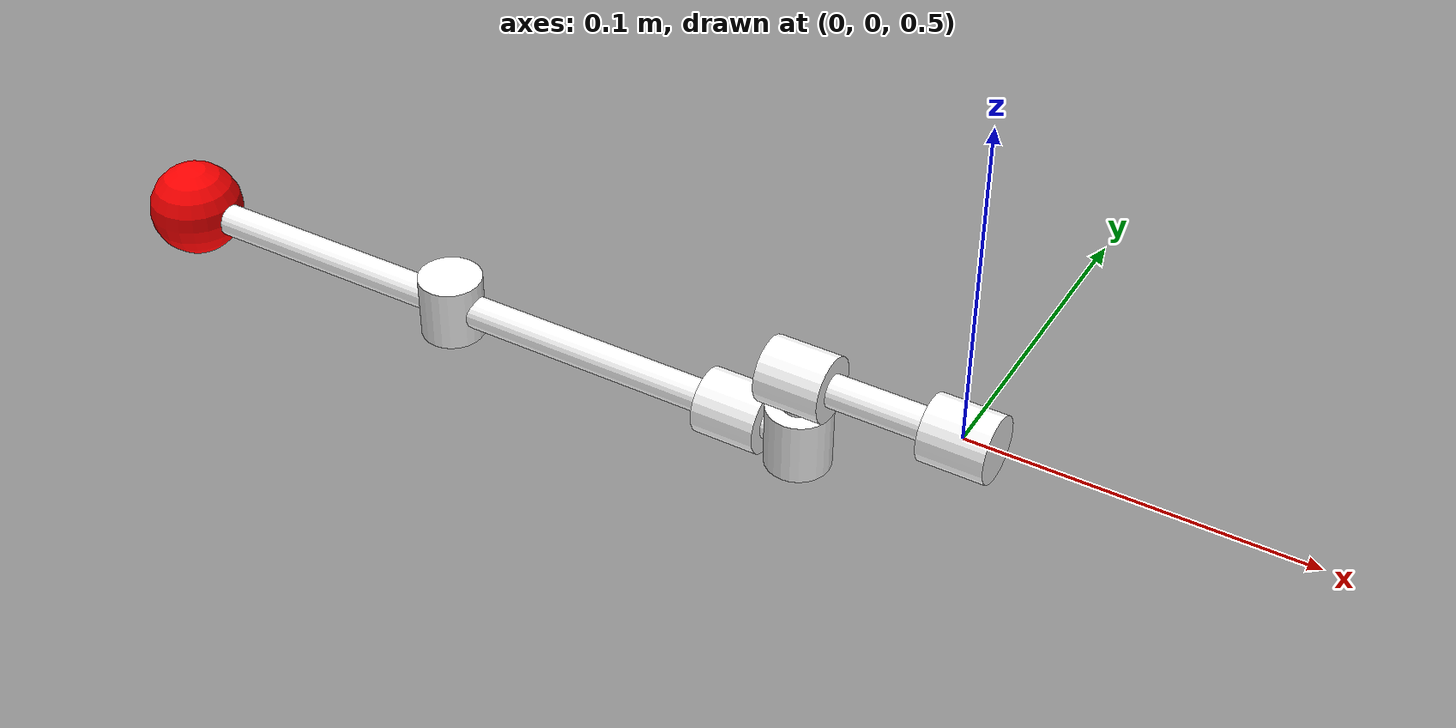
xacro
<?xml version="1.0"?>
<robot xmlns:xacro="http://wiki.ros.org/xacro" name="my_arm">

  <!-- 导入 my_arm 几何描述宏 -->
  <xacro:include filename="$(find my_arm_description)/my_arm/urdf/my_arm_description.urdf.xacro"/>

  <xacro:property name="base_joint_initial_angle" value="0"/>
  <xacro:property name="joint_1_initial_angle" value="1.57"/>
  <xacro:property name="joint_2_initial_angle" value="-1.57"/>
  <xacro:property name="joint_3_initial_angle" value="0"/>
  <xacro:property name="joint_4_initial_angle" value="0"/>

  <xacro:my_arm_description/>

  <!-- 导入 my_arm ros2_control 控制描述 -->
  <xacro:include filename="$(find my_arm)/ros2_control/my_arm.ros2_control.xacro" />
  <xacro:my_arm_ros2_control
    name="my_arm"
    base_joint_initial_angle="${base_joint_initial_angle}"
    joint_1_initial_angle="${joint_1_initial_angle}"
    joint_2_initial_angle="${joint_2_initial_angle}"
    joint_3_initial_angle="${joint_3_initial_angle}"
    joint_4_initial_angle="${joint_4_initial_angle}"/>

</robot>

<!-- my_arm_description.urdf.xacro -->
<robot xmlns:xacro="http://www.ros.org/wiki/xacro">

  <!--
    机器人描述宏
    参数：所有关节的连杆长度和基座三轴位姿（统一管理）
    注意：关节初始角度在 my_arm.urdf.xacro 中通过属性定义
  -->
  <xacro:macro name="my_arm_description" params="
    base_rod_length:=0.00
    base_x:=0
    base_y:=0
    base_z:=0.5
    base_roll:=0
    base_pitch:=1.57
    base_yaw:=0
    joint_1_rod1_length:=0.05
    joint_1_rod2_length:=0.02
    joint_2_rod1_length:=0.00
    joint_2_rod2_length:=0.02
    joint_3_rod1_length:=0.10
    joint_3_rod2_length:=0.00
    joint_4_rod1_length:=0.00
    joint_4_rod2_length:=0.10">

    <!-- 包含关节模块宏 -->
    <xacro:include filename="$(find my_arm_description)/my_arm/urdf/inc/joint_module.xacro"/>

    <!-- 创建世界坐标系链接 -->
    <link name="world"/>

    <xacro:base_module
      link_name="base_link"
      rod_length="${base_rod_length}"
      base_x="${base_x}"
      base_y="${base_y}"
      base_z="${base_z}"
      base_roll="${base_roll}"
      base_pitch="${base_pitch}"
      base_yaw="${base_yaw}"/>

    <xacro:joint_module
      link_name="link_1"
      joint_name="joint_1"
      parent_link="base_link"
      rod1_length="${joint_1_rod1_length}"
      rod2_length="${joint_1_rod2_length}"
      parent_connect_to="rod1"
      parent_rod_length="${base_rod_length}"
      connect_from="rod1"
      connect_rod_length="${joint_1_rod1_length}"/>

    <xacro:joint_module
      link_name="link_2"
      joint_name="joint_2"
      parent_link="link_1"
      rod1_length="${joint_2_rod1_length}"
      rod2_length="${joint_2_rod2_length}"
      parent_connect_to="rod2"
      parent_rod_length="${joint_1_rod2_length}"
      connect_from="rod1"
      connect_rod_length="${joint_2_rod1_length}"/>

    <xacro:joint_module
      link_name="link_3"
      joint_name="joint_3"
      parent_link="link_2"
      rod1_length="${joint_3_rod1_length}"
      rod2_length="${joint_3_rod2_length}"
      parent_connect_to="rod2"
      parent_rod_length="${joint_2_rod2_length}"
      connect_from="rod1"
      connect_rod_length="${joint_3_rod1_length}"/>

    <xacro:joint_module
      link_name="link_4"
      joint_name="joint_4"
      parent_link="link_3"
      rod1_length="${joint_4_rod1_length}"
      rod2_length="${joint_4_rod2_length}"
      parent_connect_to="rod1"
      parent_rod_length="${joint_3_rod1_length}"
      connect_from="rod2"
      connect_rod_length="${joint_4_rod2_length}"/>

    <!-- 末端执行器：红色小球，连接在关节4的连杆2（rod2）末端 -->
    <link name="end_effector">
      <!-- 视觉：红色小球 -->
      <visual>
        <origin xyz="0 0 0" rpy="0 0 0"/>
        <geometry>
          <sphere radius="0.015"/>
        </geometry>
        <material name="red">
          <color rgba="1.0 0.0 0.0 1.0"/>
        </material>
      </visual>

      <!-- 碰撞：红色小球 -->
      <collision>
        <origin xyz="0 0 0" rpy="0 0 0"/>
        <geometry>
          <sphere radius="0.015"/>
        </geometry>
      </collision>

      <!-- 惯性属性 -->
      <inertial>
        <mass value="0.01"/>
        <inertia ixx="0.0001" ixy="0.0" ixz="0.0"
                 iyy="0.0001" iyz="0.0"
                 izz="0.0001"/>
      </inertial>
    </link>

    <!-- 固定关节：将末端执行器连接到 link_4 的 rod2 末端
         在 link_4 坐标系中，rod2 的末端位置是 (rod2_length, 0, 0) -->
    <joint name="end_effector_joint" type="fixed">
      <parent link="link_4"/>
      <child link="end_effector"/>
      <origin xyz="${joint_4_rod2_length} 0 0" rpy="0 0 0"/>
    </joint>

  </xacro:macro>

</robot>

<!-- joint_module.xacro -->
<robot xmlns:xacro="http://wiki.ros.org/xacro">

  <xacro:macro name="joint_module" params="link_name joint_name parent_link rod1_length:=0.1 rod2_length:=0.1 parent_connect_to:=rod1 parent_rod_length:=0.1 connect_from:=rod1 connect_rod_length:=0.1">
    <!--
      关节主体：圆柱直径=20mm（半径=0.01m），高度=20mm（0.02m）
      两个连接杆：圆柱直径=10mm（半径=0.005m）
    -->
    <link name="${link_name}">
      <!-- 视觉：关节主体（圆柱） -->
      <visual>
        <origin xyz="0 0 0" rpy="0 0 0"/>
        <geometry>
          <cylinder radius="0.01" length="0.02"/>
        </geometry>
        <material name="white">
          <color rgba="1.0 1.0 1.0 1.0"/>
        </material>
      </visual>

      <!-- 视觉：第一个连接杆（圆柱）- 向上 -->
      <visual>
        <origin xyz="0 0 ${rod1_length/2}" rpy="0 0 0"/>
        <geometry>
          <cylinder radius="0.005" length="${rod1_length}"/>
        </geometry>
        <material name="white">
          <color rgba="1.0 1.0 1.0 1.0"/>
        </material>
      </visual>

      <!-- 视觉：第二个连接杆（圆柱）- 向前/向外 -->
      <visual>
        <origin xyz="${rod2_length/2} 0 0" rpy="0 ${pi/2} 0"/>
        <geometry>
          <cylinder radius="0.005" length="${rod2_length}"/>
        </geometry>
        <material name="white">
          <color rgba="1.0 1.0 1.0 1.0"/>
        </material>
      </visual>

      <!-- 碰撞：关节主体（圆柱） -->
      <collision>
        <origin xyz="0 0 0" rpy="0 0 0"/>
        <geometry>
          <cylinder radius="0.01" length="0.02"/>
        </geometry>
      </collision>

      <!-- 碰撞：第一个连接杆 -->
      <collision>
        <origin xyz="0 0 ${rod1_length/2}" rpy="0 0 0"/>
        <geometry>
          <cylinder radius="0.005" length="${rod1_length}"/>
        </geometry>
      </collision>

      <!-- 碰撞：第二个连接杆 -->
      <collision>
        <origin xyz="${rod2_length/2} 0 0" rpy="0 ${pi/2} 0"/>
        <geometry>
          <cylinder radius="0.005" length="${rod2_length}"/>
        </geometry>
      </collision>

      <!-- 惯性属性 -->
      <inertial>
        <!-- 圆柱质量：π * r² * h * 8000 = π * (0.01)² * 0.02 * 8000 ≈ 0.0503 kg -->
        <!-- 连杆1质量：π * (0.005)² * rod1_length * 8000 -->
        <!-- 连杆2质量：π * (0.005)² * rod2_length * 8000 -->
        <mass value="${0.0503 + 3.14159 * 0.005 * 0.005 * (rod1_length + rod2_length) * 8000}"/>
        <inertia ixx="0.001" ixy="0.0" ixz="0.0"
                 iyy="0.001" iyz="0.0"
                 izz="0.001"/>
      </inertial>
    </link>

    <!-- 旋转关节，连接到父链接 -->
    <joint name="${joint_name}" type="revolute">
      <parent link="${parent_link}"/>
      <child link="${link_name}"/>
      <xacro:if value="${parent_connect_to == 'rod1' and connect_from == 'rod1'}">
        <!-- 11连接：父rod1（Z方向）-> 子rod1（Z方向），共线，方向相同 -->
        <origin xyz="0 0 ${parent_rod_length - connect_rod_length}" rpy="0 0 0"/>
      </xacro:if>
      <xacro:if value="${parent_connect_to == 'rod1' and connect_from == 'rod2'}">
        <!-- 12连接：父rod1（Z方向）-> 子rod2（X方向），共线
             父rod1末端在(0, 0, parent_rod_length)
             子rod2起点在子关节原点，需要子X轴指向父Z轴方向
             子关节原点应该在父rod1末端位置，然后绕Y轴旋转-90度使子X轴对齐父Z轴 -->
        <origin xyz="0 0 ${parent_rod_length}" rpy="0 ${-pi/2} 0"/>
      </xacro:if>
      <xacro:if value="${parent_connect_to == 'rod2' and connect_from == 'rod1'}">
        <!-- 21连接：父rod2（X方向）-> 子rod1（Z方向），共线
             父rod2末端在(parent_rod_length, 0, 0)
             子rod1起点在子关节原点，需要子Z轴指向父X轴方向
             子关节原点应该在父rod2末端位置，然后绕Y轴旋转90度使子Z轴对齐父X轴 -->
        <origin xyz="${parent_rod_length} 0 0" rpy="0 ${pi/2} 0"/>
      </xacro:if>
      <xacro:if value="${parent_connect_to == 'rod2' and connect_from == 'rod2'}">
        <!-- 22连接：父rod2（X方向）-> 子rod2（X方向），共线，方向相同 -->
        <origin xyz="${parent_rod_length - connect_rod_length} 0 0" rpy="0 0 0"/>
      </xacro:if>
      <axis xyz="0 0 1"/>
      <limit effort="100.0" lower="${-pi}" upper="${pi}" velocity="3.14"/>
    </joint>
  </xacro:macro>

  <xacro:macro name="base_module" params="link_name rod_length:=0.1 base_x:=0 base_y:=0 base_z:=0 base_roll:=0 base_pitch:=0 base_yaw:=0">
    <link name="${link_name}">
      <!-- 视觉：关节主体（圆柱） -->
      <visual>
        <origin xyz="0 0 0" rpy="0 0 0"/>
        <geometry>
          <cylinder radius="0.01" length="0.02"/>
        </geometry>
        <material name="white">
          <color rgba="1.0 1.0 1.0 1.0"/>
        </material>
      </visual>

      <!-- 视觉：向上的连杆（圆柱） -->
      <visual>
        <origin xyz="0 0 ${rod_length/2}" rpy="0 0 0"/>
        <geometry>
          <cylinder radius="0.005" length="${rod_length}"/>
        </geometry>
        <material name="white">
          <color rgba="1.0 1.0 1.0 1.0"/>
        </material>
      </visual>

      <!-- 碰撞：关节主体（圆柱） -->
      <collision>
        <origin xyz="0 0 0" rpy="0 0 0"/>
        <geometry>
          <cylinder radius="0.01" length="0.02"/>
        </geometry>
      </collision>

      <!-- 碰撞：向上的连杆 -->
      <collision>
        <origin xyz="0 0 ${rod_length/2}" rpy="0 0 0"/>
        <geometry>
          <cylinder radius="0.005" length="${rod_length}"/>
        </geometry>
      </collision>

      <!-- 惯性属性 -->
      <inertial>
        <!-- 圆柱质量：π * r² * h * 8000 = π * (0.01)² * 0.02 * 8000 ≈ 0.0503 kg -->
        <!-- 连杆质量：π * (0.005)² * rod_length * 8000 -->
        <mass value="${0.0503 + 3.14159 * 0.005 * 0.005 * rod_length * 8000}"/>
        <inertia ixx="0.001" ixy="0.0" ixz="0.0"
                 iyy="0.001" iyz="0.0"
                 izz="0.001"/>
      </inertial>
    </link>

    <!-- 旋转关节，连接到世界坐标系（基座可以旋转） -->
    <joint name="base_joint" type="revolute">
      <parent link="world"/>
      <child link="${link_name}"/>
      <!-- 基座三轴位姿：
           - 位置：base_x, base_y, base_z + rod_length（Z轴加上连杆长度）
           - 姿态：base_roll（绕X轴）, base_pitch（绕Y轴）, base_yaw（绕Z轴） -->
      <origin xyz="${base_x} ${base_y} ${base_z + rod_length}" rpy="${base_roll} ${base_pitch} ${base_yaw}"/>
      <axis xyz="0 0 1"/>
      <limit effort="100.0" lower="${-pi}" upper="${pi}" velocity="3.14"/>
    </joint>
  </xacro:macro>

</robot>
